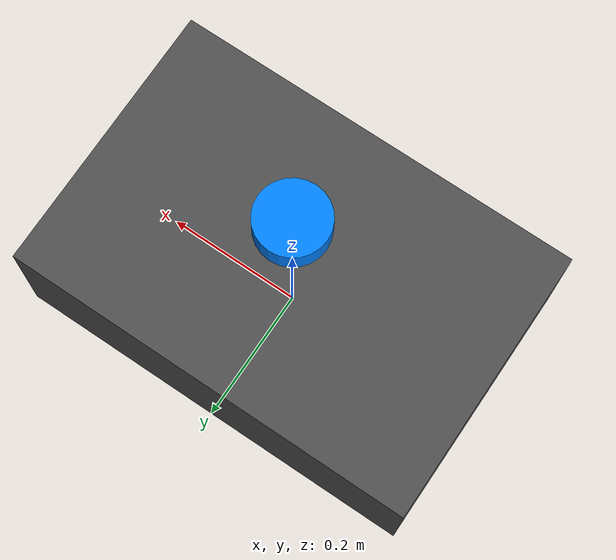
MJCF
<mujoco model="jackal_with_velodyne">
  <compiler angle="degree" coordinate="local"/>
  <option gravity="0 0 -9.81"/>

  <default>
    <joint damping="1"/>
    <geom friction="1 0.5 0.5" density="1000"/>
  </default>

  <worldbody>

    <body name="base_link" pos="0 0 0.1">
      <geom type="box" size="0.3 0.2 0.1" rgba="0.3 0.3 0.3 1"/>
      <!-- Visualize the robot body -->

      <!-- 4 wheels -->
      <body name="front_left_wheel" pos="0.2 0.15 0.05">
        <joint name="front_left_wheel_joint" type="hinge" axis="0 1 0"/>
        <geom type="cylinder" size="0.05 0.02" rgba="0.1 0.1 0.1 1" euler="0 90 0"/>
      </body>

      <body name="front_right_wheel" pos="0.2 -0.15 0.05">
        <joint name="front_right_wheel_joint" type="hinge" axis="0 1 0"/>
        <geom type="cylinder" size="0.05 0.02" rgba="0.1 0.1 0.1 1" euler="0 90 0"/>
      </body>

      <body name="rear_left_wheel" pos="-0.2 0.15 0.05">
        <joint name="rear_left_wheel_joint" type="hinge" axis="0 1 0"/>
        <geom type="cylinder" size="0.05 0.02" rgba="0.1 0.1 0.1 1" euler="0 90 0"/>
      </body>

      <body name="rear_right_wheel" pos="-0.2 -0.15 0.05">
        <joint name="rear_right_wheel_joint" type="hinge" axis="0 1 0"/>
        <geom type="cylinder" size="0.05 0.02" rgba="0.1 0.1 0.1 1" euler="0 90 0"/>
      </body>

      <!-- Velodyne lidar mount -->
      <body name="velodyne_mount" pos="0 0 0.25">
        <geom type="cylinder" size="0.05 0.02" rgba="0 0.5 1 1"/>
        <!-- Optionally attach a sensor here -->
      </body>

    </body>

  </worldbody>

  <actuator>
    <motor joint="front_left_wheel_joint" gear="100"/>
    <motor joint="front_right_wheel_joint" gear="100"/>
    <motor joint="rear_left_wheel_joint" gear="100"/>
    <motor joint="rear_right_wheel_joint" gear="100"/>
  </actuator>

</mujoco>
